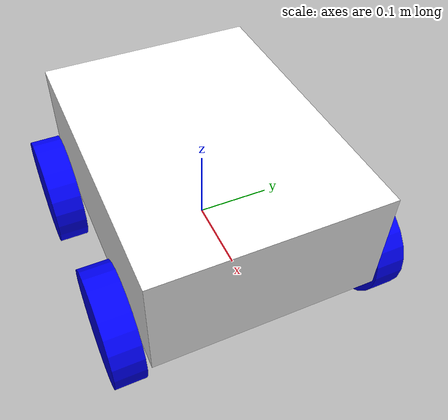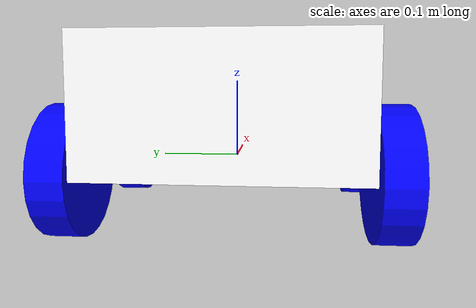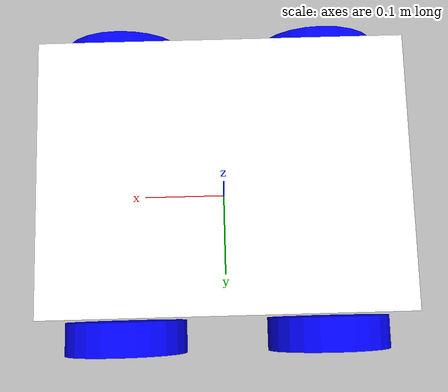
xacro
<?xml version="1.0"?>
<robot xmlns:xacro="http://www.ros.org/wiki/xacro" >

    <xacro:include filename="inertial_macros.xacro"/>

    <material name="white">
        <color rgba="1.0 1.0 1.0 1.0"/>
    </material>

    <material name="orange">
        <color rgba="1.0 0.3 0.1 1.0"/>
    </material>

    <material name="blue">
        <color rgba="0.0 0.0 1.0 1.0"/>
    </material>

    <material name="black">
        <color rgba="0.0 0.0 0.0 1.0"/>
    </material>

    <material name="red">
        <color rgba="1.0 0.0 0.0 1.0"/>
    </material>

    <!-- base link-->
    <link name="base_link">

    </link>

    <joint name="chassis_joint" type="fixed">
        <parent link="base_link"/>
        <child link="chassis"/>
        <origin xyz="0.0 0.0 0.0"/>
    </joint>
<!-- chassis link-->
    <link name="chassis">
        <visual>
            <origin xyz="0.0 0.0 0.075"/>
            <geometry>
                <box size="0.4 0.3 0.15"/>
            </geometry>
            <material name="white"/>
        </visual>
        <collision>
            <origin xyz="0.0 0.0 0.075"/>
            <geometry>
                <box size="0.4 0.3 0.15"/>
            </geometry>
        </collision>
        <xacro:inertial_box mass="0.5" x="0.3" y="0.3" z="0.15">
            <origin xyz="0.15 0.0 0.075" rpy="0 0 0"/>
        </xacro:inertial_box>
    </link>
    <gazebo reference="chassis">
        <material>Gazebo/White</material>
    </gazebo>
<!--left front wheel-->

<joint name="left_front_wheel_joint" type="continuous">
    <parent link="base_link"/>
    <child link="left_front_wheel"/>
    <origin xyz="0.125 0.175 0.0" rpy="-${pi/2} 0.0 0.0"/>
    <axis xyz="0.0 0.0 1.0"/>
</joint>

<link name="left_front_wheel">
    <visual>
        <geometry>
            <cylinder radius="0.075" length="0.04"/>
        </geometry>
        <material name="blue"/>
    </visual>
    <collision>
        <geometry>
            <cylinder radius="0.075" length="0.04"/>
        </geometry>
    </collision>
    <xacro:inertial_cylinder mass="0.1" length="0.04" radius="0.05">
        <origin xyz="0.0 0.0 0.0" rpy="0.0 0.0 0.0"/>
    </xacro:inertial_cylinder>
</link>
<gazebo reference="left_front_wheel">
    <material>Gazebo/Blue</material>
</gazebo>

<!--right front wheel-->

<joint name="right_front_wheel_joint" type="continuous">
    <parent link="base_link"/>
    <child link="right_front_wheel"/>
    <origin xyz="0.125 -0.175 0.0" rpy="${pi/2} 0.0 0.0"/>
    <axis xyz="0.0 0.0 1.0"/>
</joint>

<link name="right_front_wheel">
    <visual>
        <geometry>
            <cylinder radius="0.075" length="0.04"/>
        </geometry>
        <material name="blue"/>
    </visual>
    <collision>
        <geometry>
            <cylinder radius="0.075" length="0.04"/>
        </geometry>
    </collision>
    <xacro:inertial_cylinder mass="0.1" length="0.04" radius="0.05">
        <origin xyz="0.0 0.0 0.0" rpy="0.0 0.0 0.0"/>
    </xacro:inertial_cylinder>
</link>
<gazebo reference="right_front_wheel">
    <material>Gazebo/Blue</material>
</gazebo>

<!--left back wheel-->

<joint name="left_back_wheel_joint" type="continuous">
    <parent link="base_link"/>
    <child link="left_back_wheel"/>
    <origin xyz="-0.125 0.175 0.0" rpy="-${pi/2} 0.0 0.0"/>
    <axis xyz="0.0 0.0 1.0"/>
</joint>

<link name="left_back_wheel">
    <visual>
        <geometry>
            <cylinder radius="0.075" length="0.04"/>
        </geometry>
        <material name="blue"/>
    </visual>
    <collision>
        <geometry>
            <cylinder radius="0.075" length="0.04"/>
        </geometry>
    </collision>
    <xacro:inertial_cylinder mass="0.1" length="0.04" radius="0.05">
        <origin xyz="0.0 0.0 0.0" rpy="0.0 0.0 0.0"/>
    </xacro:inertial_cylinder>
</link>
<gazebo reference="left_back_wheel">
    <material>Gazebo/Blue</material>
</gazebo>

<!--right back wheel-->

<joint name="right_back_wheel_joint" type="continuous">
    <parent link="base_link"/>
    <child link="right_back_wheel"/>
    <origin xyz="-0.125 -0.175 0.0" rpy="${pi/2} 0.0 0.0"/>
    <axis xyz="0.0 0.0 1.0"/>
</joint>

<link name="right_back_wheel">
    <visual>
        <geometry>
            <cylinder radius="0.075" length="0.04"/>
        </geometry>
        <material name="blue"/>
    </visual>
    <collision>
        <geometry>
            <cylinder radius="0.075" length="0.04"/>
        </geometry>
    </collision>
    <xacro:inertial_cylinder mass="0.1" length="0.04" radius="0.05">
        <origin xyz="0.0 0.0 0.0" rpy="0.0 0.0 0.0"/>
    </xacro:inertial_cylinder>
</link>
<gazebo reference="right_back_wheel">
    <material>Gazebo/Blue</material>
</gazebo>

</robot>
